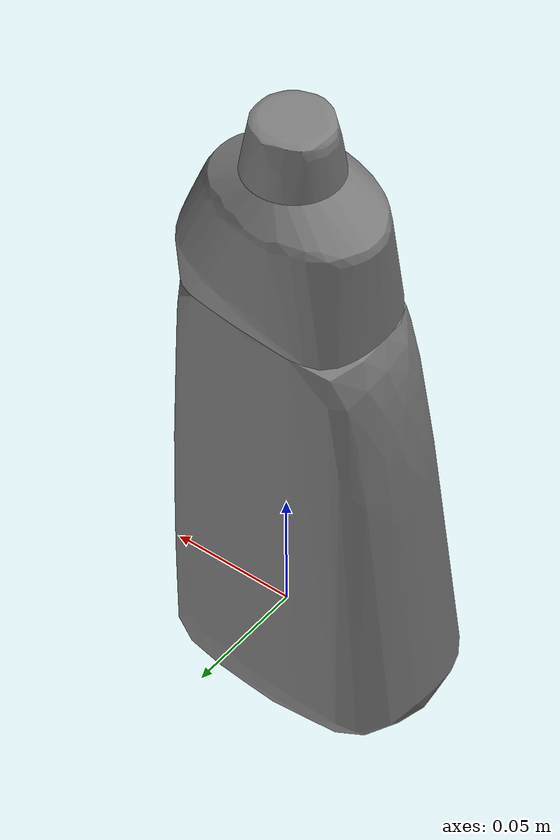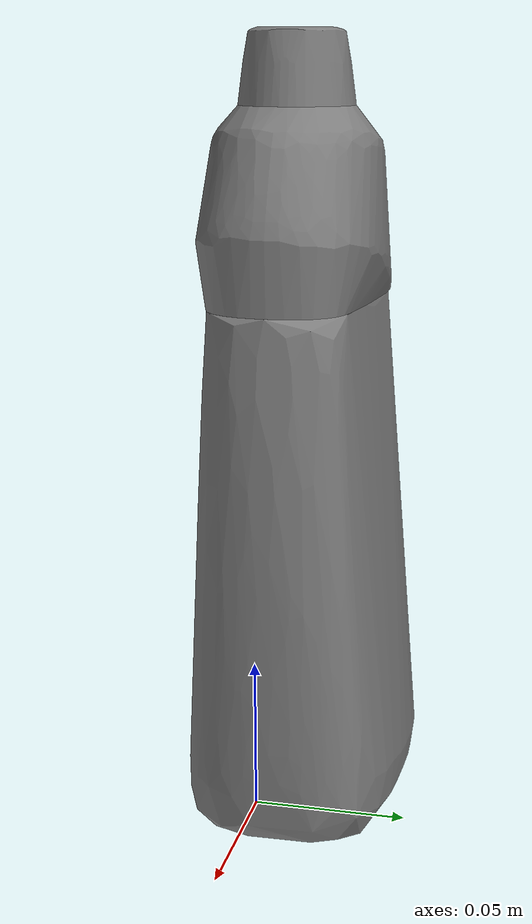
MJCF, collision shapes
<mujoco model="ycb_021_bleach_cleanser">
  <compiler meshdir="meshes" texturedir="meshes" angle="radian"/>
  <default>
    <default class="visual"><geom contype="0" conaffinity="0" group="2" density="0"/></default>
    <default class="collision"><geom group="3"/></default>
  </default>
  <asset>
    <texture name="ycb_021_bleach_cleanser_tex" type="2d" file="ycb_021_bleach_cleanser_texture.png"/>
    <material name="ycb_021_bleach_cleanser_mat" texture="ycb_021_bleach_cleanser_tex" specular="0.2" shininess="0.3"/>
    <mesh name="ycb_021_bleach_cleanser_visual" file="ycb_021_bleach_cleanser_visual.obj"/>
    <mesh name="ycb_021_bleach_cleanser_hull0" file="ycb_021_bleach_cleanser_hull0.obj"/>
    <mesh name="ycb_021_bleach_cleanser_hull1" file="ycb_021_bleach_cleanser_hull1.obj"/>
    <mesh name="ycb_021_bleach_cleanser_hull2" file="ycb_021_bleach_cleanser_hull2.obj"/>
  </asset>
  <worldbody>
    <body name="object" pos="0 0 0">
      <freejoint name="object_free"/>
      <geom type="mesh" mesh="ycb_021_bleach_cleanser_visual" material="ycb_021_bleach_cleanser_mat" class="visual"/>
      <geom type="mesh" mesh="ycb_021_bleach_cleanser_hull0" class="collision"/>
      <geom type="mesh" mesh="ycb_021_bleach_cleanser_hull1" class="collision"/>
      <geom type="mesh" mesh="ycb_021_bleach_cleanser_hull2" class="collision"/>
    </body>
  </worldbody>
</mujoco>
